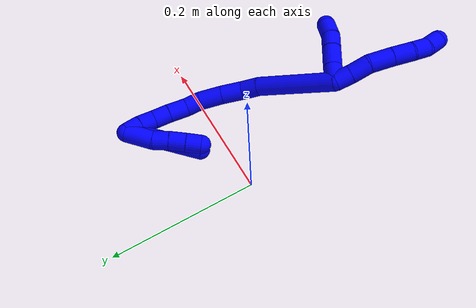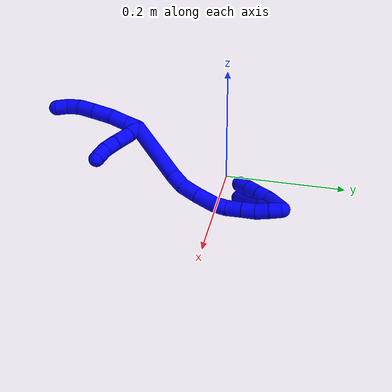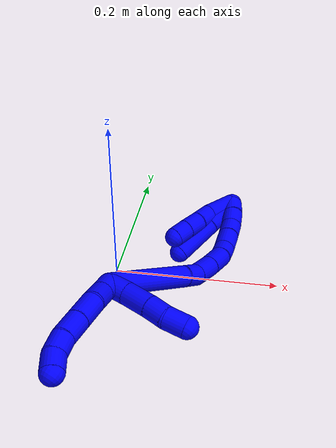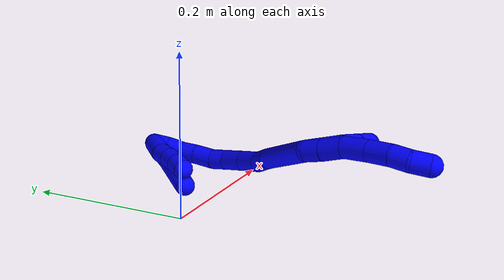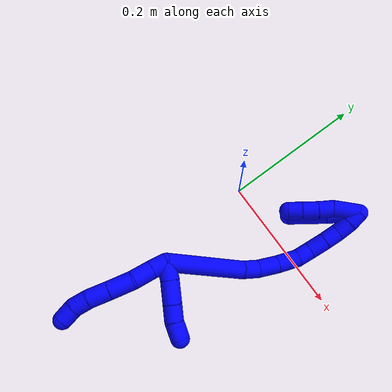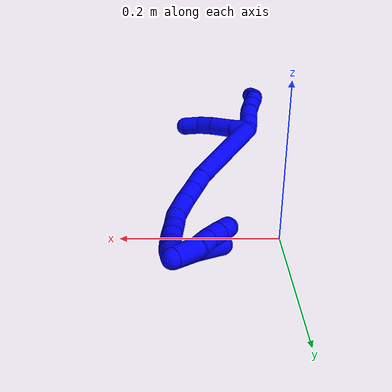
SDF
<sdf version="1.7">
 <world name="default">
  <model name="1">
   <static>0</static>
   <link name="1">
    <collision name="collision-cylinder-e_1_2_8">
     <pose>-0.007271 -0.000503 -0.007869 3.07781 -0.744902 -2.97864</pose>
     <geometry><cylinder><radius>0.0125</radius><length>0.021451</length></cylinder></geometry>
     <surface>
      <friction><ode><mu>1.16</mu><mu2>1.16</mu2><slip1>0</slip1><slip2>0</slip2></ode></friction>
      <contact><ode><kp>1e+06</kp><kd>1</kd><max_vel>0</max_vel><min_depth>0.001</min_depth></ode></contact>
     </surface>
    </collision>
    <visual name="visual-cylinder-e_1_2_8">
     <pose>-0.007271 -0.000503 -0.007869 3.07781 -0.744902 -2.97864</pose>
     <geometry><cylinder><radius>0.0125</radius><length>0.021451</length></cylinder></geometry>
     <material><ambient>0 0 1 1</ambient></material>
    </visual>
    <collision name="collision-cylinder-e_2_8_9">
     <pose>-0.024378 -0.001885 -0.024733 3.04407 -0.827637 -2.92027</pose>
     <geometry><cylinder><radius>0.0125</radius><length>0.026717</length></cylinder></geometry>
     <surface>
      <friction><ode><mu>1.16</mu><mu2>1.16</mu2><slip1>0</slip1><slip2>0</slip2></ode></friction>
      <contact><ode><kp>1e+06</kp><kd>1</kd><max_vel>0</max_vel><min_depth>0.001</min_depth></ode></contact>
     </surface>
    </collision>
    <visual name="visual-cylinder-e_2_8_9">
     <pose>-0.024378 -0.001885 -0.024733 3.04407 -0.827637 -2.92027</pose>
     <geometry><cylinder><radius>0.0125</radius><length>0.026717</length></cylinder></geometry>
     <material><ambient>0 0 1 1</ambient></material>
    </visual>
    <collision name="collision-cylinder-e_3_9_10">
     <pose>-0.042766 -0.003354 -0.046992 3.09727 -0.572218 -2.99118</pose>
     <geometry><cylinder><radius>0.0125</radius><length>0.031584</length></cylinder></geometry>
     <surface>
      <friction><ode><mu>1.16</mu><mu2>1.16</mu2><slip1>0</slip1><slip2>0</slip2></ode></friction>
      <contact><ode><kp>1e+06</kp><kd>1</kd><max_vel>0</max_vel><min_depth>0.001</min_depth></ode></contact>
     </surface>
    </collision>
    <visual name="visual-cylinder-e_3_9_10">
     <pose>-0.042766 -0.003354 -0.046992 3.09727 -0.572218 -2.99118</pose>
     <geometry><cylinder><radius>0.0125</radius><length>0.031584</length></cylinder></geometry>
     <material><ambient>0 0 1 1</ambient></material>
    </visual>
    <collision name="collision-cylinder-e_4_10_11">
     <pose>-0.058305 -0.004323 -0.072168 3.1096 -0.530311 -3.02389</pose>
     <geometry><cylinder><radius>0.0125</radius><length>0.027633</length></cylinder></geometry>
     <surface>
      <friction><ode><mu>1.16</mu><mu2>1.16</mu2><slip1>0</slip1><slip2>0</slip2></ode></friction>
      <contact><ode><kp>1e+06</kp><kd>1</kd><max_vel>0</max_vel><min_depth>0.001</min_depth></ode></contact>
     </surface>
    </collision>
    <visual name="visual-cylinder-e_4_10_11">
     <pose>-0.058305 -0.004323 -0.072168 3.1096 -0.530311 -3.02389</pose>
     <geometry><cylinder><radius>0.0125</radius><length>0.027633</length></cylinder></geometry>
     <material><ambient>0 0 1 1</ambient></material>
    </visual>
    <collision name="collision-cylinder-e_5_11_12">
     <pose>-0.06967 -0.006704 -0.093605 2.93468 -0.422651 -2.2401</pose>
     <geometry><cylinder><radius>0.0125</radius><length>0.02134</length></cylinder></geometry>
     <surface>
      <friction><ode><mu>1.16</mu><mu2>1.16</mu2><slip1>0</slip1><slip2>0</slip2></ode></friction>
      <contact><ode><kp>1e+06</kp><kd>1</kd><max_vel>0</max_vel><min_depth>0.001</min_depth></ode></contact>
     </surface>
    </collision>
    <visual name="visual-cylinder-e_5_11_12">
     <pose>-0.06967 -0.006704 -0.093605 2.93468 -0.422651 -2.2401</pose>
     <geometry><cylinder><radius>0.0125</radius><length>0.02134</length></cylinder></geometry>
     <material><ambient>0 0 1 1</ambient></material>
    </visual>
    <collision name="collision-cylinder-e_6_12_6">
     <pose>-0.0787 -0.013681 -0.111296 2.59421 -0.452713 -1.37405</pose>
     <geometry><cylinder><radius>0.0125</radius><length>0.021275</length></cylinder></geometry>
     <surface>
      <friction><ode><mu>1.16</mu><mu2>1.16</mu2><slip1>0</slip1><slip2>0</slip2></ode></friction>
      <contact><ode><kp>1e+06</kp><kd>1</kd><max_vel>0</max_vel><min_depth>0.001</min_depth></ode></contact>
     </surface>
    </collision>
    <visual name="visual-cylinder-e_6_12_6">
     <pose>-0.0787 -0.013681 -0.111296 2.59421 -0.452713 -1.37405</pose>
     <geometry><cylinder><radius>0.0125</radius><length>0.021275</length></cylinder></geometry>
     <material><ambient>0 0 1 1</ambient></material>
    </visual>
    <collision name="collision-cylinder-e_1_2_13">
     <pose>-0.003477 -0.011094 -6.2e-05 1.57635 -0.303724 -0.30539</pose>
     <geometry><cylinder><radius>0.0125</radius><length>0.023252</length></cylinder></geometry>
     <surface>
      <friction><ode><mu>1.16</mu><mu2>1.16</mu2><slip1>0</slip1><slip2>0</slip2></ode></friction>
      <contact><ode><kp>1e+06</kp><kd>1</kd><max_vel>0</max_vel><min_depth>0.001</min_depth></ode></contact>
     </surface>
    </collision>
    <visual name="visual-cylinder-e_1_2_13">
     <pose>-0.003477 -0.011094 -6.2e-05 1.57635 -0.303724 -0.30539</pose>
     <geometry><cylinder><radius>0.0125</radius><length>0.023252</length></cylinder></geometry>
     <material><ambient>0 0 1 1</ambient></material>
    </visual>
    <collision name="collision-cylinder-e_2_13_14">
     <pose>-0.012643 -0.036463 -0.001259 1.65015 -0.378132 -0.408565</pose>
     <geometry><cylinder><radius>0.0125</radius><length>0.030818</length></cylinder></geometry>
     <surface>
      <friction><ode><mu>1.16</mu><mu2>1.16</mu2><slip1>0</slip1><slip2>0</slip2></ode></friction>
      <contact><ode><kp>1e+06</kp><kd>1</kd><max_vel>0</max_vel><min_depth>0.001</min_depth></ode></contact>
     </surface>
    </collision>
    <visual name="visual-cylinder-e_2_13_14">
     <pose>-0.012643 -0.036463 -0.001259 1.65015 -0.378132 -0.408565</pose>
     <geometry><cylinder><radius>0.0125</radius><length>0.030818</length></cylinder></geometry>
     <material><ambient>0 0 1 1</ambient></material>
    </visual>
    <collision name="collision-cylinder-e_3_14_15">
     <pose>-0.021823 -0.061206 -0.003649 1.69014 -0.319767 -0.359581</pose>
     <geometry><cylinder><radius>0.0125</radius><length>0.022211</length></cylinder></geometry>
     <surface>
      <friction><ode><mu>1.16</mu><mu2>1.16</mu2><slip1>0</slip1><slip2>0</slip2></ode></friction>
      <contact><ode><kp>1e+06</kp><kd>1</kd><max_vel>0</max_vel><min_depth>0.001</min_depth></ode></contact>
     </surface>
    </collision>
    <visual name="visual-cylinder-e_3_14_15">
     <pose>-0.021823 -0.061206 -0.003649 1.69014 -0.319767 -0.359581</pose>
     <geometry><cylinder><radius>0.0125</radius><length>0.022211</length></cylinder></geometry>
     <material><ambient>0 0 1 1</ambient></material>
    </visual>
    <collision name="collision-cylinder-e_4_15_5">
     <pose>-0.027327 -0.083332 -0.004085 1.50062 -0.170622 -0.159101</pose>
     <geometry><cylinder><radius>0.0125</radius><length>0.023719</length></cylinder></geometry>
     <surface>
      <friction><ode><mu>1.16</mu><mu2>1.16</mu2><slip1>0</slip1><slip2>0</slip2></ode></friction>
      <contact><ode><kp>1e+06</kp><kd>1</kd><max_vel>0</max_vel><min_depth>0.001</min_depth></ode></contact>
     </surface>
    </collision>
    <visual name="visual-cylinder-e_4_15_5">
     <pose>-0.027327 -0.083332 -0.004085 1.50062 -0.170622 -0.159101</pose>
     <geometry><cylinder><radius>0.0125</radius><length>0.023719</length></cylinder></geometry>
     <material><ambient>0 0 1 1</ambient></material>
    </visual>
    <collision name="collision-cylinder-e_1_2_16">
     <pose>0.030964 -0.026629 0.034599 0.655961 0.616882 0.215983</pose>
     <geometry><cylinder><radius>0.0125</radius><length>0.107052</length></cylinder></geometry>
     <surface>
      <friction><ode><mu>1.16</mu><mu2>1.16</mu2><slip1>0</slip1><slip2>0</slip2></ode></friction>
      <contact><ode><kp>1e+06</kp><kd>1</kd><max_vel>0</max_vel><min_depth>0.001</min_depth></ode></contact>
     </surface>
    </collision>
    <visual name="visual-cylinder-e_1_2_16">
     <pose>0.030964 -0.026629 0.034599 0.655961 0.616882 0.215983</pose>
     <geometry><cylinder><radius>0.0125</radius><length>0.107052</length></cylinder></geometry>
     <material><ambient>0 0 1 1</ambient></material>
    </visual>
    <collision name="collision-cylinder-e_2_16_17">
     <pose>0.070144 -0.057785 0.076427 0.559379 0.76665 0.230627</pose>
     <geometry><cylinder><radius>0.0125</radius><length>0.023684</length></cylinder></geometry>
     <surface>
      <friction><ode><mu>1.16</mu><mu2>1.16</mu2><slip1>0</slip1><slip2>0</slip2></ode></friction>
      <contact><ode><kp>1e+06</kp><kd>1</kd><max_vel>0</max_vel><min_depth>0.001</min_depth></ode></contact>
     </surface>
    </collision>
    <visual name="visual-cylinder-e_2_16_17">
     <pose>0.070144 -0.057785 0.076427 0.559379 0.76665 0.230627</pose>
     <geometry><cylinder><radius>0.0125</radius><length>0.023684</length></cylinder></geometry>
     <material><ambient>0 0 1 1</ambient></material>
    </visual>
    <collision name="collision-cylinder-e_3_17_18">
     <pose>0.086869 -0.065032 0.09522 0.231095 0.621616 0.07453</pose>
     <geometry><cylinder><radius>0.0125</radius><length>0.029225</length></cylinder></geometry>
     <surface>
      <friction><ode><mu>1.16</mu><mu2>1.16</mu2><slip1>0</slip1><slip2>0</slip2></ode></friction>
      <contact><ode><kp>1e+06</kp><kd>1</kd><max_vel>0</max_vel><min_depth>0.001</min_depth></ode></contact>
     </surface>
    </collision>
    <visual name="visual-cylinder-e_3_17_18">
     <pose>0.086869 -0.065032 0.09522 0.231095 0.621616 0.07453</pose>
     <geometry><cylinder><radius>0.0125</radius><length>0.029225</length></cylinder></geometry>
     <material><ambient>0 0 1 1</ambient></material>
    </visual>
    <collision name="collision-cylinder-e_4_18_19">
     <pose>0.104659 -0.069501 0.119004 0.142101 0.644614 0.047526</pose>
     <geometry><cylinder><radius>0.0125</radius><length>0.03089</length></cylinder></geometry>
     <surface>
      <friction><ode><mu>1.16</mu><mu2>1.16</mu2><slip1>0</slip1><slip2>0</slip2></ode></friction>
      <contact><ode><kp>1e+06</kp><kd>1</kd><max_vel>0</max_vel><min_depth>0.001</min_depth></ode></contact>
     </surface>
    </collision>
    <visual name="visual-cylinder-e_4_18_19">
     <pose>0.104659 -0.069501 0.119004 0.142101 0.644614 0.047526</pose>
     <geometry><cylinder><radius>0.0125</radius><length>0.03089</length></cylinder></geometry>
     <material><ambient>0 0 1 1</ambient></material>
    </visual>
    <collision name="collision-cylinder-e_5_19_20">
     <pose>0.120413 -0.069936 0.139203 -0.163183 0.67514 -0.05739</pose>
     <geometry><cylinder><radius>0.0125</radius><length>0.020714</length></cylinder></geometry>
     <surface>
      <friction><ode><mu>1.16</mu><mu2>1.16</mu2><slip1>0</slip1><slip2>0</slip2></ode></friction>
      <contact><ode><kp>1e+06</kp><kd>1</kd><max_vel>0</max_vel><min_depth>0.001</min_depth></ode></contact>
     </surface>
    </collision>
    <visual name="visual-cylinder-e_5_19_20">
     <pose>0.120413 -0.069936 0.139203 -0.163183 0.67514 -0.05739</pose>
     <geometry><cylinder><radius>0.0125</radius><length>0.020714</length></cylinder></geometry>
     <material><ambient>0 0 1 1</ambient></material>
    </visual>
    <collision name="collision-cylinder-e_6_20_21">
     <pose>0.132638 -0.065867 0.158281 -0.243281 0.465957 -0.057998</pose>
     <geometry><cylinder><radius>0.0125</radius><length>0.025605</length></cylinder></geometry>
     <surface>
      <friction><ode><mu>1.16</mu><mu2>1.16</mu2><slip1>0</slip1><slip2>0</slip2></ode></friction>
      <contact><ode><kp>1e+06</kp><kd>1</kd><max_vel>0</max_vel><min_depth>0.001</min_depth></ode></contact>
     </surface>
    </collision>
    <visual name="visual-cylinder-e_6_20_21">
     <pose>0.132638 -0.065867 0.158281 -0.243281 0.465957 -0.057998</pose>
     <geometry><cylinder><radius>0.0125</radius><length>0.025605</length></cylinder></geometry>
     <material><ambient>0 0 1 1</ambient></material>
    </visual>
    <collision name="collision-cylinder-e_7_21_22">
     <pose>0.143809 -0.060623 0.178413 -0.268886 0.524481 -0.072581</pose>
     <geometry><cylinder><radius>0.0125</radius><length>0.021645</length></cylinder></geometry>
     <surface>
      <friction><ode><mu>1.16</mu><mu2>1.16</mu2><slip1>0</slip1><slip2>0</slip2></ode></friction>
      <contact><ode><kp>1e+06</kp><kd>1</kd><max_vel>0</max_vel><min_depth>0.001</min_depth></ode></contact>
     </surface>
    </collision>
    <visual name="visual-cylinder-e_7_21_22">
     <pose>0.143809 -0.060623 0.178413 -0.268886 0.524481 -0.072581</pose>
     <geometry><cylinder><radius>0.0125</radius><length>0.021645</length></cylinder></geometry>
     <material><ambient>0 0 1 1</ambient></material>
    </visual>
    <collision name="collision-cylinder-e_8_22_23">
     <pose>0.153108 -0.054458 0.196506 -0.385424 0.377608 -0.074538</pose>
     <geometry><cylinder><radius>0.0125</radius><length>0.021039</length></cylinder></geometry>
     <surface>
      <friction><ode><mu>1.16</mu><mu2>1.16</mu2><slip1>0</slip1><slip2>0</slip2></ode></friction>
      <contact><ode><kp>1e+06</kp><kd>1</kd><max_vel>0</max_vel><min_depth>0.001</min_depth></ode></contact>
     </surface>
    </collision>
    <visual name="visual-cylinder-e_8_22_23">
     <pose>0.153108 -0.054458 0.196506 -0.385424 0.377608 -0.074538</pose>
     <geometry><cylinder><radius>0.0125</radius><length>0.021039</length></cylinder></geometry>
     <material><ambient>0 0 1 1</ambient></material>
    </visual>
    <collision name="collision-cylinder-e_9_23_1">
     <pose>0.161349 -0.046207 0.213409 -0.528093 0.447972 -0.123025</pose>
     <geometry><cylinder><radius>0.0125</radius><length>0.020146</length></cylinder></geometry>
     <surface>
      <friction><ode><mu>1.16</mu><mu2>1.16</mu2><slip1>0</slip1><slip2>0</slip2></ode></friction>
      <contact><ode><kp>1e+06</kp><kd>1</kd><max_vel>0</max_vel><min_depth>0.001</min_depth></ode></contact>
     </surface>
    </collision>
    <visual name="visual-cylinder-e_9_23_1">
     <pose>0.161349 -0.046207 0.213409 -0.528093 0.447972 -0.123025</pose>
     <geometry><cylinder><radius>0.0125</radius><length>0.020146</length></cylinder></geometry>
     <material><ambient>0 0 1 1</ambient></material>
    </visual>
    <collision name="collision-cylinder-e_1_1_24">
     <pose>0.162047 -0.033421 0.205235 -2.66783 -0.200898 0.790986</pose>
     <geometry><cylinder><radius>0.0125</radius><length>0.036737</length></cylinder></geometry>
     <surface>
      <friction><ode><mu>1.16</mu><mu2>1.16</mu2><slip1>0</slip1><slip2>0</slip2></ode></friction>
      <contact><ode><kp>1e+06</kp><kd>1</kd><max_vel>0</max_vel><min_depth>0.001</min_depth></ode></contact>
     </surface>
    </collision>
    <visual name="visual-cylinder-e_1_1_24">
     <pose>0.162047 -0.033421 0.205235 -2.66783 -0.200898 0.790986</pose>
     <geometry><cylinder><radius>0.0125</radius><length>0.036737</length></cylinder></geometry>
     <material><ambient>0 0 1 1</ambient></material>
    </visual>
    <collision name="collision-cylinder-e_2_24_25">
     <pose>0.154562 -0.022652 0.179777 -2.87713 -0.37231 1.9118</pose>
     <geometry><cylinder><radius>0.0125</radius><length>0.021001</length></cylinder></geometry>
     <surface>
      <friction><ode><mu>1.16</mu><mu2>1.16</mu2><slip1>0</slip1><slip2>0</slip2></ode></friction>
      <contact><ode><kp>1e+06</kp><kd>1</kd><max_vel>0</max_vel><min_depth>0.001</min_depth></ode></contact>
     </surface>
    </collision>
    <visual name="visual-cylinder-e_2_24_25">
     <pose>0.154562 -0.022652 0.179777 -2.87713 -0.37231 1.9118</pose>
     <geometry><cylinder><radius>0.0125</radius><length>0.021001</length></cylinder></geometry>
     <material><ambient>0 0 1 1</ambient></material>
    </visual>
    <collision name="collision-cylinder-e_3_25_26">
     <pose>0.147467 -0.016836 0.160252 -2.82894 -0.299745 1.52798</pose>
     <geometry><cylinder><radius>0.0125</radius><length>0.022184</length></cylinder></geometry>
     <surface>
      <friction><ode><mu>1.16</mu><mu2>1.16</mu2><slip1>0</slip1><slip2>0</slip2></ode></friction>
      <contact><ode><kp>1e+06</kp><kd>1</kd><max_vel>0</max_vel><min_depth>0.001</min_depth></ode></contact>
     </surface>
    </collision>
    <visual name="visual-cylinder-e_3_25_26">
     <pose>0.147467 -0.016836 0.160252 -2.82894 -0.299745 1.52798</pose>
     <geometry><cylinder><radius>0.0125</radius><length>0.022184</length></cylinder></geometry>
     <material><ambient>0 0 1 1</ambient></material>
    </visual>
    <collision name="collision-cylinder-e_4_26_4">
     <pose>0.141669 -0.0108 0.140857 -2.85181 -0.253967 1.43764</pose>
     <geometry><cylinder><radius>0.0125</radius><length>0.020078</length></cylinder></geometry>
     <surface>
      <friction><ode><mu>1.16</mu><mu2>1.16</mu2><slip1>0</slip1><slip2>0</slip2></ode></friction>
      <contact><ode><kp>1e+06</kp><kd>1</kd><max_vel>0</max_vel><min_depth>0.001</min_depth></ode></contact>
     </surface>
    </collision>
    <visual name="visual-cylinder-e_4_26_4">
     <pose>0.141669 -0.0108 0.140857 -2.85181 -0.253967 1.43764</pose>
     <geometry><cylinder><radius>0.0125</radius><length>0.020078</length></cylinder></geometry>
     <material><ambient>0 0 1 1</ambient></material>
    </visual>
    <collision name="collision-cylinder-e_1_1_27">
     <pose>0.163251 -0.03728 0.199808 -2.94134 -0.111992 1.01786</pose>
     <geometry><cylinder><radius>0.0125</radius><length>0.044037</length></cylinder></geometry>
     <surface>
      <friction><ode><mu>1.16</mu><mu2>1.16</mu2><slip1>0</slip1><slip2>0</slip2></ode></friction>
      <contact><ode><kp>1e+06</kp><kd>1</kd><max_vel>0</max_vel><min_depth>0.001</min_depth></ode></contact>
     </surface>
    </collision>
    <visual name="visual-cylinder-e_1_1_27">
     <pose>0.163251 -0.03728 0.199808 -2.94134 -0.111992 1.01786</pose>
     <geometry><cylinder><radius>0.0125</radius><length>0.044037</length></cylinder></geometry>
     <material><ambient>0 0 1 1</ambient></material>
    </visual>
    <collision name="collision-cylinder-e_2_27_3">
     <pose>0.159393 -0.026956 0.151063 -2.92627 -0.049958 0.454347</pose>
     <geometry><cylinder><radius>0.0125</radius><length>0.055963</length></cylinder></geometry>
     <surface>
      <friction><ode><mu>1.16</mu><mu2>1.16</mu2><slip1>0</slip1><slip2>0</slip2></ode></friction>
      <contact><ode><kp>1e+06</kp><kd>1</kd><max_vel>0</max_vel><min_depth>0.001</min_depth></ode></contact>
     </surface>
    </collision>
    <visual name="visual-cylinder-e_2_27_3">
     <pose>0.159393 -0.026956 0.151063 -2.92627 -0.049958 0.454347</pose>
     <geometry><cylinder><radius>0.0125</radius><length>0.055963</length></cylinder></geometry>
     <material><ambient>0 0 1 1</ambient></material>
    </visual>
    <collision name="collision-sphere-3">
     <pose>0.157996 -0.020985 0.123762 0 -0 0</pose>
     <geometry><sphere><radius>0.0125</radius></sphere></geometry>
     <surface>
      <friction><ode><mu>1.16</mu><mu2>1.16</mu2><slip1>0</slip1><slip2>0</slip2></ode></friction>
      <contact><ode><kp>1e+06</kp><kd>1</kd><max_vel>0</max_vel><min_depth>0.001</min_depth></ode></contact>
     </surface>
    </collision>
    <visual name="visual-sphere-3">
     <pose>0.157996 -0.020985 0.123762 0 -0 0</pose>
     <geometry><sphere><radius>0.0125</radius></sphere></geometry>
     <material><ambient>0 0 1 1</ambient></material>
    </visual>
    <collision name="collision-sphere-27">
     <pose>0.160791 -0.032927 0.178364 0 -0 0</pose>
     <geometry><sphere><radius>0.0125</radius></sphere></geometry>
     <surface>
      <friction><ode><mu>1.16</mu><mu2>1.16</mu2><slip1>0</slip1><slip2>0</slip2></ode></friction>
      <contact><ode><kp>1e+06</kp><kd>1</kd><max_vel>0</max_vel><min_depth>0.001</min_depth></ode></contact>
     </surface>
    </collision>
    <visual name="visual-sphere-27">
     <pose>0.160791 -0.032927 0.178364 0 -0 0</pose>
     <geometry><sphere><radius>0.0125</radius></sphere></geometry>
     <material><ambient>0 0 1 1</ambient></material>
    </visual>
    <collision name="collision-sphere-4">
     <pose>0.139147 -0.008023 0.131545 0 -0 0</pose>
     <geometry><sphere><radius>0.0125</radius></sphere></geometry>
     <surface>
      <friction><ode><mu>1.16</mu><mu2>1.16</mu2><slip1>0</slip1><slip2>0</slip2></ode></friction>
      <contact><ode><kp>1e+06</kp><kd>1</kd><max_vel>0</max_vel><min_depth>0.001</min_depth></ode></contact>
     </surface>
    </collision>
    <visual name="visual-sphere-4">
     <pose>0.139147 -0.008023 0.131545 0 -0 0</pose>
     <geometry><sphere><radius>0.0125</radius></sphere></geometry>
     <material><ambient>0 0 1 1</ambient></material>
    </visual>
    <collision name="collision-sphere-26">
     <pose>0.144191 -0.013576 0.150168 0 -0 0</pose>
     <geometry><sphere><radius>0.0125</radius></sphere></geometry>
     <surface>
      <friction><ode><mu>1.16</mu><mu2>1.16</mu2><slip1>0</slip1><slip2>0</slip2></ode></friction>
      <contact><ode><kp>1e+06</kp><kd>1</kd><max_vel>0</max_vel><min_depth>0.001</min_depth></ode></contact>
     </surface>
    </collision>
    <visual name="visual-sphere-26">
     <pose>0.144191 -0.013576 0.150168 0 -0 0</pose>
     <geometry><sphere><radius>0.0125</radius></sphere></geometry>
     <material><ambient>0 0 1 1</ambient></material>
    </visual>
    <collision name="collision-sphere-25">
     <pose>0.150742 -0.020095 0.170336 0 -0 0</pose>
     <geometry><sphere><radius>0.0125</radius></sphere></geometry>
     <surface>
      <friction><ode><mu>1.16</mu><mu2>1.16</mu2><slip1>0</slip1><slip2>0</slip2></ode></friction>
      <contact><ode><kp>1e+06</kp><kd>1</kd><max_vel>0</max_vel><min_depth>0.001</min_depth></ode></contact>
     </surface>
    </collision>
    <visual name="visual-sphere-25">
     <pose>0.150742 -0.020095 0.170336 0 -0 0</pose>
     <geometry><sphere><radius>0.0125</radius></sphere></geometry>
     <material><ambient>0 0 1 1</ambient></material>
    </visual>
    <collision name="collision-sphere-24">
     <pose>0.158381 -0.025209 0.189218 0 -0 0</pose>
     <geometry><sphere><radius>0.0125</radius></sphere></geometry>
     <surface>
      <friction><ode><mu>1.16</mu><mu2>1.16</mu2><slip1>0</slip1><slip2>0</slip2></ode></friction>
      <contact><ode><kp>1e+06</kp><kd>1</kd><max_vel>0</max_vel><min_depth>0.001</min_depth></ode></contact>
     </surface>
    </collision>
    <visual name="visual-sphere-24">
     <pose>0.158381 -0.025209 0.189218 0 -0 0</pose>
     <geometry><sphere><radius>0.0125</radius></sphere></geometry>
     <material><ambient>0 0 1 1</ambient></material>
    </visual>
    <collision name="collision-sphere-1">
     <pose>0.165712 -0.041632 0.221251 0 -0 0</pose>
     <geometry><sphere><radius>0.0125</radius></sphere></geometry>
     <surface>
      <friction><ode><mu>1.16</mu><mu2>1.16</mu2><slip1>0</slip1><slip2>0</slip2></ode></friction>
      <contact><ode><kp>1e+06</kp><kd>1</kd><max_vel>0</max_vel><min_depth>0.001</min_depth></ode></contact>
     </surface>
    </collision>
    <visual name="visual-sphere-1">
     <pose>0.165712 -0.041632 0.221251 0 -0 0</pose>
     <geometry><sphere><radius>0.0125</radius></sphere></geometry>
     <material><ambient>0 0 1 1</ambient></material>
    </visual>
    <collision name="collision-sphere-23">
     <pose>0.156986 -0.050782 0.205567 0 -0 0</pose>
     <geometry><sphere><radius>0.0125</radius></sphere></geometry>
     <surface>
      <friction><ode><mu>1.16</mu><mu2>1.16</mu2><slip1>0</slip1><slip2>0</slip2></ode></friction>
      <contact><ode><kp>1e+06</kp><kd>1</kd><max_vel>0</max_vel><min_depth>0.001</min_depth></ode></contact>
     </surface>
    </collision>
    <visual name="visual-sphere-23">
     <pose>0.156986 -0.050782 0.205567 0 -0 0</pose>
     <geometry><sphere><radius>0.0125</radius></sphere></geometry>
     <material><ambient>0 0 1 1</ambient></material>
    </visual>
    <collision name="collision-sphere-22">
     <pose>0.149229 -0.058135 0.187445 0 -0 0</pose>
     <geometry><sphere><radius>0.0125</radius></sphere></geometry>
     <surface>
      <friction><ode><mu>1.16</mu><mu2>1.16</mu2><slip1>0</slip1><slip2>0</slip2></ode></friction>
      <contact><ode><kp>1e+06</kp><kd>1</kd><max_vel>0</max_vel><min_depth>0.001</min_depth></ode></contact>
     </surface>
    </collision>
    <visual name="visual-sphere-22">
     <pose>0.149229 -0.058135 0.187445 0 -0 0</pose>
     <geometry><sphere><radius>0.0125</radius></sphere></geometry>
     <material><ambient>0 0 1 1</ambient></material>
    </visual>
    <collision name="collision-sphere-21">
     <pose>0.13839 -0.063112 0.169382 0 -0 0</pose>
     <geometry><sphere><radius>0.0125</radius></sphere></geometry>
     <surface>
      <friction><ode><mu>1.16</mu><mu2>1.16</mu2><slip1>0</slip1><slip2>0</slip2></ode></friction>
      <contact><ode><kp>1e+06</kp><kd>1</kd><max_vel>0</max_vel><min_depth>0.001</min_depth></ode></contact>
     </surface>
    </collision>
    <visual name="visual-sphere-21">
     <pose>0.13839 -0.063112 0.169382 0 -0 0</pose>
     <geometry><sphere><radius>0.0125</radius></sphere></geometry>
     <material><ambient>0 0 1 1</ambient></material>
    </visual>
    <collision name="collision-sphere-12">
     <pose>-0.074047 -0.008703 -0.103128 0 -0 0</pose>
     <geometry><sphere><radius>0.0125</radius></sphere></geometry>
     <surface>
      <friction><ode><mu>1.16</mu><mu2>1.16</mu2><slip1>0</slip1><slip2>0</slip2></ode></friction>
      <contact><ode><kp>1e+06</kp><kd>1</kd><max_vel>0</max_vel><min_depth>0.001</min_depth></ode></contact>
     </surface>
    </collision>
    <visual name="visual-sphere-12">
     <pose>-0.074047 -0.008703 -0.103128 0 -0 0</pose>
     <geometry><sphere><radius>0.0125</radius></sphere></geometry>
     <material><ambient>0 0 1 1</ambient></material>
    </visual>
    <collision name="collision-sphere-11">
     <pose>-0.065294 -0.004704 -0.084081 0 -0 0</pose>
     <geometry><sphere><radius>0.0125</radius></sphere></geometry>
     <surface>
      <friction><ode><mu>1.16</mu><mu2>1.16</mu2><slip1>0</slip1><slip2>0</slip2></ode></friction>
      <contact><ode><kp>1e+06</kp><kd>1</kd><max_vel>0</max_vel><min_depth>0.001</min_depth></ode></contact>
     </surface>
    </collision>
    <visual name="visual-sphere-11">
     <pose>-0.065294 -0.004704 -0.084081 0 -0 0</pose>
     <geometry><sphere><radius>0.0125</radius></sphere></geometry>
     <material><ambient>0 0 1 1</ambient></material>
    </visual>
    <collision name="collision-sphere-10">
     <pose>-0.051317 -0.003942 -0.060256 0 -0 0</pose>
     <geometry><sphere><radius>0.0125</radius></sphere></geometry>
     <surface>
      <friction><ode><mu>1.16</mu><mu2>1.16</mu2><slip1>0</slip1><slip2>0</slip2></ode></friction>
      <contact><ode><kp>1e+06</kp><kd>1</kd><max_vel>0</max_vel><min_depth>0.001</min_depth></ode></contact>
     </surface>
    </collision>
    <visual name="visual-sphere-10">
     <pose>-0.051317 -0.003942 -0.060256 0 -0 0</pose>
     <geometry><sphere><radius>0.0125</radius></sphere></geometry>
     <material><ambient>0 0 1 1</ambient></material>
    </visual>
    <collision name="collision-sphere-9">
     <pose>-0.034214 -0.002765 -0.033729 0 -0 0</pose>
     <geometry><sphere><radius>0.0125</radius></sphere></geometry>
     <surface>
      <friction><ode><mu>1.16</mu><mu2>1.16</mu2><slip1>0</slip1><slip2>0</slip2></ode></friction>
      <contact><ode><kp>1e+06</kp><kd>1</kd><max_vel>0</max_vel><min_depth>0.001</min_depth></ode></contact>
     </surface>
    </collision>
    <visual name="visual-sphere-9">
     <pose>-0.034214 -0.002765 -0.033729 0 -0 0</pose>
     <geometry><sphere><radius>0.0125</radius></sphere></geometry>
     <material><ambient>0 0 1 1</ambient></material>
    </visual>
    <collision name="collision-sphere-2">
     <geometry><sphere><radius>0.0125</radius></sphere></geometry>
     <surface>
      <friction><ode><mu>1.16</mu><mu2>1.16</mu2><slip1>0</slip1><slip2>0</slip2></ode></friction>
      <contact><ode><kp>1e+06</kp><kd>1</kd><max_vel>0</max_vel><min_depth>0.001</min_depth></ode></contact>
     </surface>
    </collision>
    <visual name="visual-sphere-2">
     <geometry><sphere><radius>0.0125</radius></sphere></geometry>
     <material><ambient>0 0 1 1</ambient></material>
    </visual>
    <collision name="collision-sphere-19">
     <pose>0.11394 -0.071249 0.131225 0 -0 0</pose>
     <geometry><sphere><radius>0.0125</radius></sphere></geometry>
     <surface>
      <friction><ode><mu>1.16</mu><mu2>1.16</mu2><slip1>0</slip1><slip2>0</slip2></ode></friction>
      <contact><ode><kp>1e+06</kp><kd>1</kd><max_vel>0</max_vel><min_depth>0.001</min_depth></ode></contact>
     </surface>
    </collision>
    <visual name="visual-sphere-19">
     <pose>0.11394 -0.071249 0.131225 0 -0 0</pose>
     <geometry><sphere><radius>0.0125</radius></sphere></geometry>
     <material><ambient>0 0 1 1</ambient></material>
    </visual>
    <collision name="collision-sphere-8">
     <pose>-0.014541 -0.001005 -0.015737 0 -0 0</pose>
     <geometry><sphere><radius>0.0125</radius></sphere></geometry>
     <surface>
      <friction><ode><mu>1.16</mu><mu2>1.16</mu2><slip1>0</slip1><slip2>0</slip2></ode></friction>
      <contact><ode><kp>1e+06</kp><kd>1</kd><max_vel>0</max_vel><min_depth>0.001</min_depth></ode></contact>
     </surface>
    </collision>
    <visual name="visual-sphere-8">
     <pose>-0.014541 -0.001005 -0.015737 0 -0 0</pose>
     <geometry><sphere><radius>0.0125</radius></sphere></geometry>
     <material><ambient>0 0 1 1</ambient></material>
    </visual>
    <collision name="collision-sphere-6">
     <pose>-0.083353 -0.01866 -0.119465 0 -0 0</pose>
     <geometry><sphere><radius>0.0125</radius></sphere></geometry>
     <surface>
      <friction><ode><mu>1.16</mu><mu2>1.16</mu2><slip1>0</slip1><slip2>0</slip2></ode></friction>
      <contact><ode><kp>1e+06</kp><kd>1</kd><max_vel>0</max_vel><min_depth>0.001</min_depth></ode></contact>
     </surface>
    </collision>
    <visual name="visual-sphere-6">
     <pose>-0.083353 -0.01866 -0.119465 0 -0 0</pose>
     <geometry><sphere><radius>0.0125</radius></sphere></geometry>
     <material><ambient>0 0 1 1</ambient></material>
    </visual>
    <collision name="collision-sphere-13">
     <pose>-0.006954 -0.022188 -0.000123 0 -0 0</pose>
     <geometry><sphere><radius>0.0125</radius></sphere></geometry>
     <surface>
      <friction><ode><mu>1.16</mu><mu2>1.16</mu2><slip1>0</slip1><slip2>0</slip2></ode></friction>
      <contact><ode><kp>1e+06</kp><kd>1</kd><max_vel>0</max_vel><min_depth>0.001</min_depth></ode></contact>
     </surface>
    </collision>
    <visual name="visual-sphere-13">
     <pose>-0.006954 -0.022188 -0.000123 0 -0 0</pose>
     <geometry><sphere><radius>0.0125</radius></sphere></geometry>
     <material><ambient>0 0 1 1</ambient></material>
    </visual>
    <collision name="collision-sphere-14">
     <pose>-0.018332 -0.050739 -0.002394 0 -0 0</pose>
     <geometry><sphere><radius>0.0125</radius></sphere></geometry>
     <surface>
      <friction><ode><mu>1.16</mu><mu2>1.16</mu2><slip1>0</slip1><slip2>0</slip2></ode></friction>
      <contact><ode><kp>1e+06</kp><kd>1</kd><max_vel>0</max_vel><min_depth>0.001</min_depth></ode></contact>
     </surface>
    </collision>
    <visual name="visual-sphere-14">
     <pose>-0.018332 -0.050739 -0.002394 0 -0 0</pose>
     <geometry><sphere><radius>0.0125</radius></sphere></geometry>
     <material><ambient>0 0 1 1</ambient></material>
    </visual>
    <collision name="collision-sphere-15">
     <pose>-0.025314 -0.071674 -0.004904 0 -0 0</pose>
     <geometry><sphere><radius>0.0125</radius></sphere></geometry>
     <surface>
      <friction><ode><mu>1.16</mu><mu2>1.16</mu2><slip1>0</slip1><slip2>0</slip2></ode></friction>
      <contact><ode><kp>1e+06</kp><kd>1</kd><max_vel>0</max_vel><min_depth>0.001</min_depth></ode></contact>
     </surface>
    </collision>
    <visual name="visual-sphere-15">
     <pose>-0.025314 -0.071674 -0.004904 0 -0 0</pose>
     <geometry><sphere><radius>0.0125</radius></sphere></geometry>
     <material><ambient>0 0 1 1</ambient></material>
    </visual>
    <collision name="collision-sphere-5">
     <pose>-0.029341 -0.09499 -0.003265 0 -0 0</pose>
     <geometry><sphere><radius>0.0125</radius></sphere></geometry>
     <surface>
      <friction><ode><mu>1.16</mu><mu2>1.16</mu2><slip1>0</slip1><slip2>0</slip2></ode></friction>
      <contact><ode><kp>1e+06</kp><kd>1</kd><max_vel>0</max_vel><min_depth>0.001</min_depth></ode></contact>
     </surface>
    </collision>
    <visual name="visual-sphere-5">
     <pose>-0.029341 -0.09499 -0.003265 0 -0 0</pose>
     <geometry><sphere><radius>0.0125</radius></sphere></geometry>
     <material><ambient>0 0 1 1</ambient></material>
    </visual>
    <collision name="collision-sphere-16">
     <pose>0.061929 -0.053259 0.069198 0 -0 0</pose>
     <geometry><sphere><radius>0.0125</radius></sphere></geometry>
     <surface>
      <friction><ode><mu>1.16</mu><mu2>1.16</mu2><slip1>0</slip1><slip2>0</slip2></ode></friction>
      <contact><ode><kp>1e+06</kp><kd>1</kd><max_vel>0</max_vel><min_depth>0.001</min_depth></ode></contact>
     </surface>
    </collision>
    <visual name="visual-sphere-16">
     <pose>0.061929 -0.053259 0.069198 0 -0 0</pose>
     <geometry><sphere><radius>0.0125</radius></sphere></geometry>
     <material><ambient>0 0 1 1</ambient></material>
    </visual>
    <collision name="collision-sphere-17">
     <pose>0.078359 -0.062311 0.083657 0 -0 0</pose>
     <geometry><sphere><radius>0.0125</radius></sphere></geometry>
     <surface>
      <friction><ode><mu>1.16</mu><mu2>1.16</mu2><slip1>0</slip1><slip2>0</slip2></ode></friction>
      <contact><ode><kp>1e+06</kp><kd>1</kd><max_vel>0</max_vel><min_depth>0.001</min_depth></ode></contact>
     </surface>
    </collision>
    <visual name="visual-sphere-17">
     <pose>0.078359 -0.062311 0.083657 0 -0 0</pose>
     <geometry><sphere><radius>0.0125</radius></sphere></geometry>
     <material><ambient>0 0 1 1</ambient></material>
    </visual>
    <collision name="collision-sphere-18">
     <pose>0.095378 -0.067752 0.106783 0 -0 0</pose>
     <geometry><sphere><radius>0.0125</radius></sphere></geometry>
     <surface>
      <friction><ode><mu>1.16</mu><mu2>1.16</mu2><slip1>0</slip1><slip2>0</slip2></ode></friction>
      <contact><ode><kp>1e+06</kp><kd>1</kd><max_vel>0</max_vel><min_depth>0.001</min_depth></ode></contact>
     </surface>
    </collision>
    <visual name="visual-sphere-18">
     <pose>0.095378 -0.067752 0.106783 0 -0 0</pose>
     <geometry><sphere><radius>0.0125</radius></sphere></geometry>
     <material><ambient>0 0 1 1</ambient></material>
    </visual>
    <collision name="collision-sphere-20">
     <pose>0.126886 -0.068622 0.147181 0 -0 0</pose>
     <geometry><sphere><radius>0.0125</radius></sphere></geometry>
     <surface>
      <friction><ode><mu>1.16</mu><mu2>1.16</mu2><slip1>0</slip1><slip2>0</slip2></ode></friction>
      <contact><ode><kp>1e+06</kp><kd>1</kd><max_vel>0</max_vel><min_depth>0.001</min_depth></ode></contact>
     </surface>
    </collision>
    <visual name="visual-sphere-20">
     <pose>0.126886 -0.068622 0.147181 0 -0 0</pose>
     <geometry><sphere><radius>0.0125</radius></sphere></geometry>
     <material><ambient>0 0 1 1</ambient></material>
    </visual>
    <inertial>
     <pose>0.065484 -0.034231 0.076352 0 -0 0</pose>
     <mass>0.75</mass>
     <inertia><ixx>0.000158</ixx><ixy>0</ixy><ixz>0</ixz><iyy>0.000126</iyy><iyz>0</iyz><izz>-9e-06</izz></inertia>
    </inertial>
   </link>
   <pose>0.030038 -0.143133 0.096078 0.661355 0.980876 1.85896</pose>
  </model>
 </world>
</sdf>
